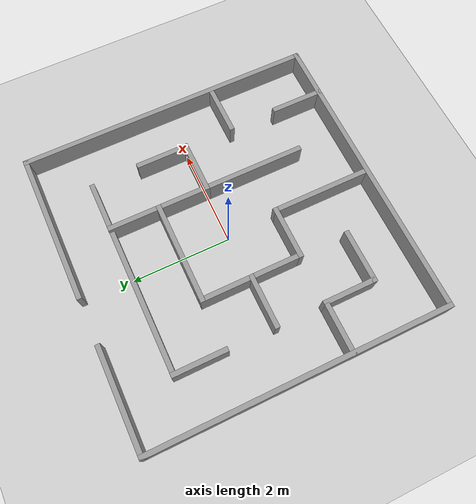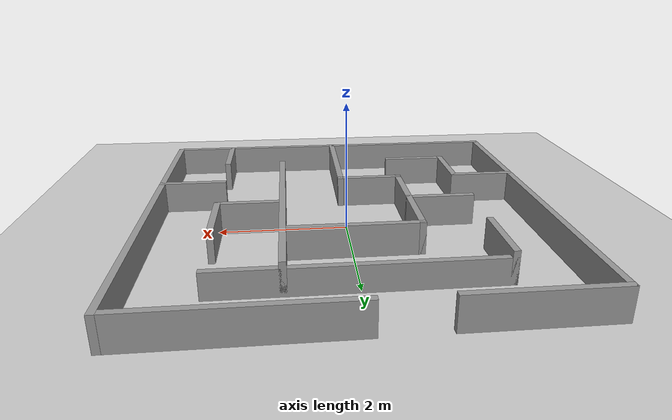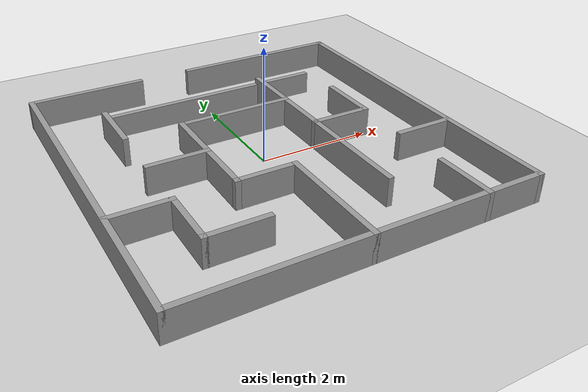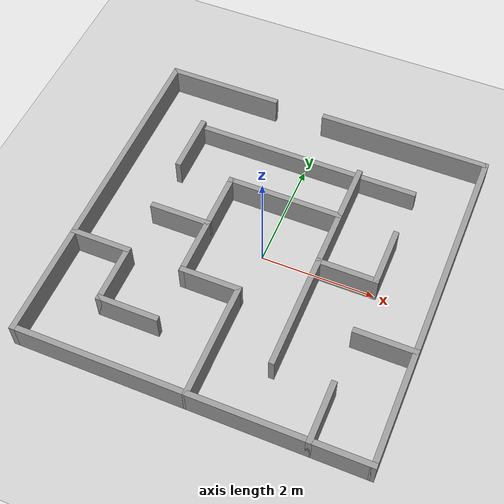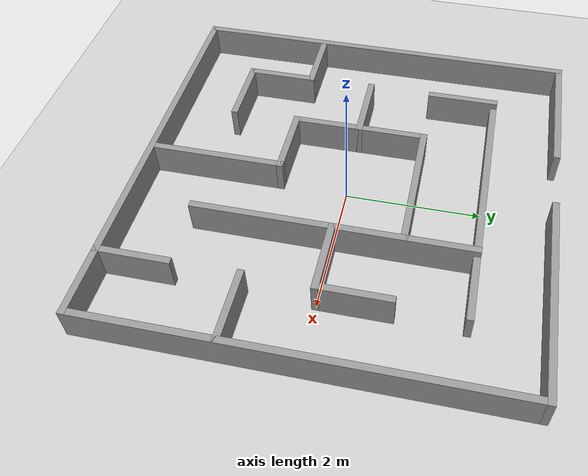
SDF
<sdf version="1.4">
  <world name="default">

    <scene>
      <ambient>0.4 0.4 0.4 1</ambient>
      <background>0.7 0.7 0.7 1</background>
      <shadows>true</shadows>
    </scene>

    <!-- A global light source -->
    <include>
      <uri>model://sun</uri>
    </include>

    <!-- A ground plane -->
    <include>
      <uri>model://ground_plane</uri>
    </include>

    <!-- Maze 3 v1 -->
    <include>
      <uri>model://turtlebot3_maze_18</uri>
    </include>

    <physics type="ode">
      <real_time_update_rate>1000.0</real_time_update_rate>
      <max_step_size>0.001</max_step_size>
      <real_time_factor>1</real_time_factor>
      <ode>
        <solver>
          <type>quick</type>
          <iters>150</iters>
          <precon_iters>0</precon_iters>
          <sor>1.400000</sor>
          <use_dynamic_moi_rescaling>1</use_dynamic_moi_rescaling>
        </solver>
        <constraints>
          <cfm>0.00001</cfm>
          <erp>0.2</erp>
          <contact_max_correcting_vel>2000.000000</contact_max_correcting_vel>
          <contact_surface_layer>0.01000</contact_surface_layer>
        </constraints>
      </ode>
    </physics>
  </world>

</sdf>

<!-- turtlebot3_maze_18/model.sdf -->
<sdf version='1.7'>
  <model name='turtlebot3_maze_18'>
    <pose>0 0 0 0 -0 0</pose>
    <link name='Wall_10'>
      <collision name='Wall_10_Collision'>
        <geometry>
          <box>
            <size>4.1 0.1 0.4</size>
          </box>
        </geometry>
        <pose>0 0 0.2 0 -0 0</pose>
      </collision>
      <visual name='Wall_10_Visual'>
        <pose>0 0 0.2 0 -0 0</pose>
        <geometry>
          <box>
            <size>4.1 0.1 0.4</size>
          </box>
        </geometry>
        <material>
          <script>
            <uri>file://media/materials/scripts/gazebo.material</uri>
            <name>Gazebo/Grey</name>
          </script>
          <ambient>1 1 1 1</ambient>
        </material>
        <meta>
          <layer>0</layer>
        </meta>
      </visual>
      <pose>0 2 0 0 -0 0</pose>
    </link>
    <link name='Wall_12'>
      <collision name='Wall_12_Collision'>
        <geometry>
          <box>
            <size>2.1 0.1 0.5</size>
          </box>
        </geometry>
        <pose>0 0 0.25 0 -0 0</pose>
      </collision>
      <visual name='Wall_12_Visual'>
        <pose>0 0 0.25 0 -0 0</pose>
        <geometry>
          <box>
            <size>2.1 0.1 0.5</size>
          </box>
        </geometry>
        <material>
          <script>
            <uri>file://media/materials/scripts/gazebo.material</uri>
            <name>Gazebo/Grey</name>
          </script>
          <ambient>1 1 1 1</ambient>
        </material>
        <meta>
          <layer>0</layer>
        </meta>
      </visual>
      <pose>0 -2 0 0 -0 1.5708</pose>
    </link>
    <link name='Wall_13'>
      <collision name='Wall_13_Collision'>
        <geometry>
          <box>
            <size>1.1 0.1 0.5</size>
          </box>
        </geometry>
        <pose>0 0 0.25 0 -0 0</pose>
      </collision>
      <visual name='Wall_13_Visual'>
        <pose>0 0 0.25 0 -0 0</pose>
        <geometry>
          <box>
            <size>1.1 0.1 0.5</size>
          </box>
        </geometry>
        <material>
          <script>
            <uri>file://media/materials/scripts/gazebo.material</uri>
            <name>Gazebo/Grey</name>
          </script>
          <ambient>1 1 1 1</ambient>
        </material>
        <meta>
          <layer>0</layer>
        </meta>
      </visual>
      <pose>-0.5 -1 0 0 -0 3.14159</pose>
    </link>
    <link name='Wall_14'>
      <collision name='Wall_14_Collision'>
        <geometry>
          <box>
            <size>2.1 0.1 0.5</size>
          </box>
        </geometry>
        <pose>0 0 0.25 0 -0 0</pose>
      </collision>
      <visual name='Wall_14_Visual'>
        <pose>0 0 0.25 0 -0 0</pose>
        <geometry>
          <box>
            <size>2.1 0.1 0.5</size>
          </box>
        </geometry>
        <material>
          <script>
            <uri>file://media/materials/scripts/gazebo.material</uri>
            <name>Gazebo/Grey</name>
          </script>
          <ambient>1 1 1 1</ambient>
        </material>
        <meta>
          <layer>0</layer>
        </meta>
      </visual>
      <pose>-1 0 0 0 -0 1.5708</pose>
    </link>
    <link name='Wall_15'>
      <collision name='Wall_15_Collision'>
        <geometry>
          <box>
            <size>2.1 0.1 0.5</size>
          </box>
        </geometry>
        <pose>0 0 0.25 0 -0 0</pose>
      </collision>
      <visual name='Wall_15_Visual'>
        <pose>0 0 0.25 0 -0 0</pose>
        <geometry>
          <box>
            <size>2.1 0.1 0.5</size>
          </box>
        </geometry>
        <material>
          <script>
            <uri>file://media/materials/scripts/gazebo.material</uri>
            <name>Gazebo/Grey</name>
          </script>
          <ambient>1 1 1 1</ambient>
        </material>
        <meta>
          <layer>0</layer>
        </meta>
      </visual>
      <pose>0 1 0 0 -0 0</pose>
    </link>
    <link name='Wall_17'>
      <collision name='Wall_17_Collision'>
        <geometry>
          <box>
            <size>4.1 0.1 0.5</size>
          </box>
        </geometry>
        <pose>0 0 0.25 0 -0 0</pose>
      </collision>
      <visual name='Wall_17_Visual'>
        <pose>0 0 0.25 0 -0 0</pose>
        <geometry>
          <box>
            <size>4.1 0.1 0.5</size>
          </box>
        </geometry>
        <material>
          <script>
            <uri>file://media/materials/scripts/gazebo.material</uri>
            <name>Gazebo/Grey</name>
          </script>
          <ambient>1 1 1 1</ambient>
        </material>
        <meta>
          <layer>0</layer>
        </meta>
      </visual>
      <pose>1 0 0 0 -0 -1.5708</pose>
    </link>
    <link name='Wall_19'>
      <collision name='Wall_19_Collision'>
        <geometry>
          <box>
            <size>1.1 0.1 0.5</size>
          </box>
        </geometry>
        <pose>0 0 0.25 0 -0 0</pose>
      </collision>
      <visual name='Wall_19_Visual'>
        <pose>0 0 0.25 0 -0 0</pose>
        <geometry>
          <box>
            <size>1.1 0.1 0.5</size>
          </box>
        </geometry>
        <material>
          <script>
            <uri>file://media/materials/scripts/gazebo.material</uri>
            <name>Gazebo/Grey</name>
          </script>
          <ambient>1 1 1 1</ambient>
        </material>
        <meta>
          <layer>0</layer>
        </meta>
      </visual>
      <pose>2 0.5 0 0 -0 -1.5708</pose>
    </link>
    <link name='Wall_20'>
      <collision name='Wall_20_Collision'>
        <geometry>
          <box>
            <size>1.1 0.1 0.5</size>
          </box>
        </geometry>
        <pose>0 0 0.25 0 -0 0</pose>
      </collision>
      <visual name='Wall_20_Visual'>
        <pose>0 0 0.25 0 -0 0</pose>
        <geometry>
          <box>
            <size>1.1 0.1 0.5</size>
          </box>
        </geometry>
        <material>
          <script>
            <uri>file://media/materials/scripts/gazebo.material</uri>
            <name>Gazebo/Grey</name>
          </script>
          <ambient>1 1 1 1</ambient>
        </material>
        <meta>
          <layer>0</layer>
        </meta>
      </visual>
      <pose>1.5 0 0 0 -0 3.14159</pose>
    </link>
    <link name='Wall_22'>
      <collision name='Wall_22_Collision'>
        <geometry>
          <box>
            <size>1.1 0.1 0.5</size>
          </box>
        </geometry>
        <pose>0 0 0.25 0 -0 0</pose>
      </collision>
      <visual name='Wall_22_Visual'>
        <pose>0 0 0.25 0 -0 0</pose>
        <geometry>
          <box>
            <size>1.1 0.1 0.5</size>
          </box>
        </geometry>
        <material>
          <script>
            <uri>file://media/materials/scripts/gazebo.material</uri>
            <name>Gazebo/Grey</name>
          </script>
          <ambient>1 1 1 1</ambient>
        </material>
        <meta>
          <layer>0</layer>
        </meta>
      </visual>
      <pose>2.5 -1 0 0 -0 0</pose>
    </link>
    <link name='Wall_24'>
      <collision name='Wall_24_Collision'>
        <geometry>
          <box>
            <size>1.1 0.1 0.5</size>
          </box>
        </geometry>
        <pose>0 0 0.25 0 -0 0</pose>
      </collision>
      <visual name='Wall_24_Visual'>
        <pose>0 0 0.25 0 -0 0</pose>
        <geometry>
          <box>
            <size>1.1 0.1 0.5</size>
          </box>
        </geometry>
        <material>
          <script>
            <uri>file://media/materials/scripts/gazebo.material</uri>
            <name>Gazebo/Grey</name>
          </script>
          <ambient>1 1 1 1</ambient>
        </material>
        <meta>
          <layer>0</layer>
        </meta>
      </visual>
      <pose>2 -2.5 0 0 -0 -1.5708</pose>
    </link>
    <link name='Wall_26'>
      <collision name='Wall_26_Collision'>
        <geometry>
          <box>
            <size>1.1 0.1 0.5</size>
          </box>
        </geometry>
        <pose>0 0 0.25 0 -0 0</pose>
      </collision>
      <visual name='Wall_26_Visual'>
        <pose>0 0 0.25 0 -0 0</pose>
        <geometry>
          <box>
            <size>1.1 0.1 0.5</size>
          </box>
        </geometry>
        <material>
          <script>
            <uri>file://media/materials/scripts/gazebo.material</uri>
            <name>Gazebo/Grey</name>
          </script>
          <ambient>1 1 1 1</ambient>
        </material>
        <meta>
          <layer>0</layer>
        </meta>
      </visual>
      <pose>-2.5 -1 0 0 -0 0</pose>
    </link>
    <link name='Wall_27'>
      <collision name='Wall_27_Collision'>
        <geometry>
          <box>
            <size>1.1 0.1 0.5</size>
          </box>
        </geometry>
        <pose>0 0 0.25 0 -0 0</pose>
      </collision>
      <visual name='Wall_27_Visual'>
        <pose>0 0 0.25 0 -0 0</pose>
        <geometry>
          <box>
            <size>1.1 0.1 0.5</size>
          </box>
        </geometry>
        <material>
          <script>
            <uri>file://media/materials/scripts/gazebo.material</uri>
            <name>Gazebo/Grey</name>
          </script>
          <ambient>1 1 1 1</ambient>
        </material>
        <meta>
          <layer>0</layer>
        </meta>
      </visual>
      <pose>-2 -1.5 0 0 -0 -1.5708</pose>
    </link>
    <link name='Wall_28'>
      <collision name='Wall_28_Collision'>
        <geometry>
          <box>
            <size>1.1 0.1 0.5</size>
          </box>
        </geometry>
        <pose>0 0 0.25 0 -0 0</pose>
      </collision>
      <visual name='Wall_28_Visual'>
        <pose>0 0 0.25 0 -0 0</pose>
        <geometry>
          <box>
            <size>1.1 0.1 0.5</size>
          </box>
        </geometry>
        <material>
          <script>
            <uri>file://media/materials/scripts/gazebo.material</uri>
            <name>Gazebo/Grey</name>
          </script>
          <ambient>1 1 1 1</ambient>
        </material>
        <meta>
          <layer>0</layer>
        </meta>
      </visual>
      <pose>-1.5 -2 0 0 -0 0</pose>
    </link>
    <link name='Wall_3'>
      <collision name='Wall_3_Collision'>
        <geometry>
          <box>
            <size>2.1 0.1 0.5</size>
          </box>
        </geometry>
        <pose>0 0 0.25 0 -0 0</pose>
      </collision>
      <visual name='Wall_3_Visual'>
        <pose>0 0 0.25 0 -0 0</pose>
        <geometry>
          <box>
            <size>2.1 0.1 0.5</size>
          </box>
        </geometry>
        <material>
          <script>
            <uri>file://media/materials/scripts/gazebo.material</uri>
            <name>Gazebo/Grey</name>
          </script>
          <ambient>1 1 1 1</ambient>
        </material>
        <meta>
          <layer>0</layer>
        </meta>
      </visual>
      <pose>-2 3 0 0 -0 3.14159</pose>
    </link>
    <link name='Wall_30'>
      <collision name='Wall_30_Collision'>
        <geometry>
          <box>
            <size>1.1 0.1 0.5</size>
          </box>
        </geometry>
        <pose>0 0 0.25 0 -0 0</pose>
      </collision>
      <visual name='Wall_30_Visual'>
        <pose>0 0 0.25 0 -0 0</pose>
        <geometry>
          <box>
            <size>1.1 0.1 0.5</size>
          </box>
        </geometry>
        <material>
          <script>
            <uri>file://media/materials/scripts/gazebo.material</uri>
            <name>Gazebo/Grey</name>
          </script>
          <ambient>1 1 1 1</ambient>
        </material>
        <meta>
          <layer>0</layer>
        </meta>
      </visual>
      <pose>-1.5 0 0 0 -0 0</pose>
    </link>
    <link name='Wall_32'>
      <collision name='Wall_32_Collision'>
        <geometry>
          <box>
            <size>6.1 0.1 0.5</size>
          </box>
        </geometry>
        <pose>0 0 0.25 0 -0 0</pose>
      </collision>
      <visual name='Wall_32_Visual'>
        <pose>0 0 0.25 0 -0 0</pose>
        <geometry>
          <box>
            <size>6.1 0.1 0.5</size>
          </box>
        </geometry>
        <material>
          <script>
            <uri>file://media/materials/scripts/gazebo.material</uri>
            <name>Gazebo/Grey</name>
          </script>
          <ambient>1 1 1 1</ambient>
        </material>
        <meta>
          <layer>0</layer>
        </meta>
      </visual>
      <pose>-3 0 0 0 -0 -1.5708</pose>
    </link>
    <link name='Wall_5'>
      <collision name='Wall_5_Collision'>
        <geometry>
          <box>
            <size>6.1 0.1 0.5</size>
          </box>
        </geometry>
        <pose>0 0 0.25 0 -0 0</pose>
      </collision>
      <visual name='Wall_5_Visual'>
        <pose>0 0 0.25 0 -0 0</pose>
        <geometry>
          <box>
            <size>6.1 0.1 0.5</size>
          </box>
        </geometry>
        <material>
          <script>
            <uri>file://media/materials/scripts/gazebo.material</uri>
            <name>Gazebo/Grey</name>
          </script>
          <ambient>1 1 1 1</ambient>
        </material>
        <meta>
          <layer>0</layer>
        </meta>
      </visual>
      <pose>0 -3 0 0 -0 0</pose>
    </link>
    <link name='Wall_6'>
      <collision name='Wall_6_Collision'>
        <geometry>
          <box>
            <size>6.1 0.1 0.5</size>
          </box>
        </geometry>
        <pose>0 0 0.25 0 -0 0</pose>
      </collision>
      <visual name='Wall_6_Visual'>
        <pose>0 0 0.25 0 -0 0</pose>
        <geometry>
          <box>
            <size>6.1 0.1 0.5</size>
          </box>
        </geometry>
        <material>
          <script>
            <uri>file://media/materials/scripts/gazebo.material</uri>
            <name>Gazebo/Grey</name>
          </script>
          <ambient>1 1 1 1</ambient>
        </material>
        <meta>
          <layer>0</layer>
        </meta>
      </visual>
      <pose>3 0 0 0 -0 1.5708</pose>
    </link>
    <link name='Wall_7'>
      <collision name='Wall_7_Collision'>
        <geometry>
          <box>
            <size>3.1 0.1 0.5</size>
          </box>
        </geometry>
        <pose>0 0 0.25 0 -0 0</pose>
      </collision>
      <visual name='Wall_7_Visual'>
        <pose>0 0 0.25 0 -0 0</pose>
        <geometry>
          <box>
            <size>3.1 0.1 0.5</size>
          </box>
        </geometry>
        <material>
          <script>
            <uri>file://media/materials/scripts/gazebo.material</uri>
            <name>Gazebo/Grey</name>
          </script>
          <ambient>1 1 1 1</ambient>
        </material>
        <meta>
          <layer>0</layer>
        </meta>
      </visual>
      <pose>1.5 3 0 0 -0 3.14159</pose>
    </link>
    <link name='Wall_9'>
      <collision name='Wall_9_Collision'>
        <geometry>
          <box>
            <size>1.1 0.1 0.5</size>
          </box>
        </geometry>
        <pose>0 0 0.25 0 -0 0</pose>
      </collision>
      <visual name='Wall_9_Visual'>
        <pose>0 0 0.25 0 -0 0</pose>
        <geometry>
          <box>
            <size>1.1 0.1 0.5</size>
          </box>
        </geometry>
        <material>
          <script>
            <uri>file://media/materials/scripts/gazebo.material</uri>
            <name>Gazebo/Grey</name>
          </script>
          <ambient>1 1 1 1</ambient>
        </material>
        <meta>
          <layer>0</layer>
        </meta>
      </visual>
      <pose>-2 1.5 0 0 -0 1.5708</pose>
    </link>
    <static>1</static>
  </model>
</sdf>
